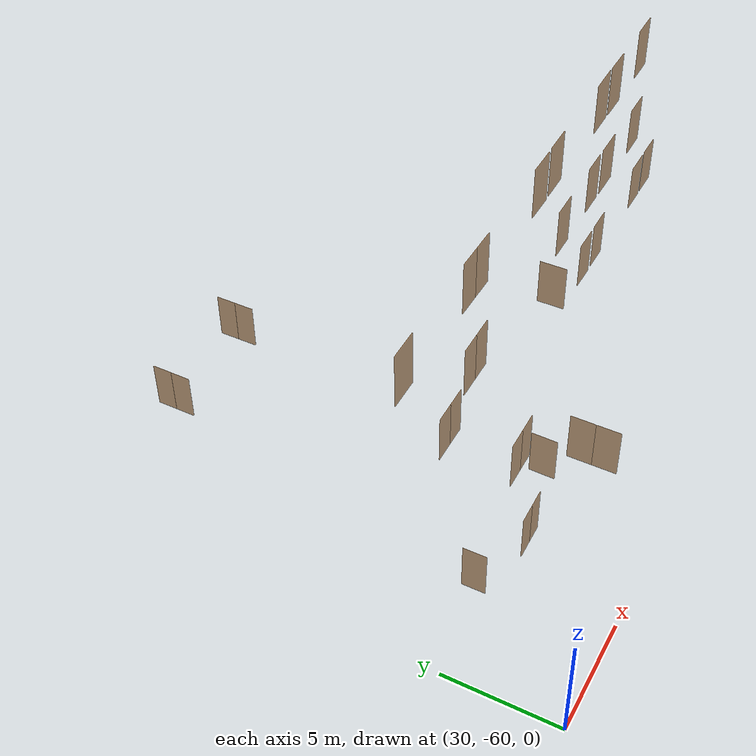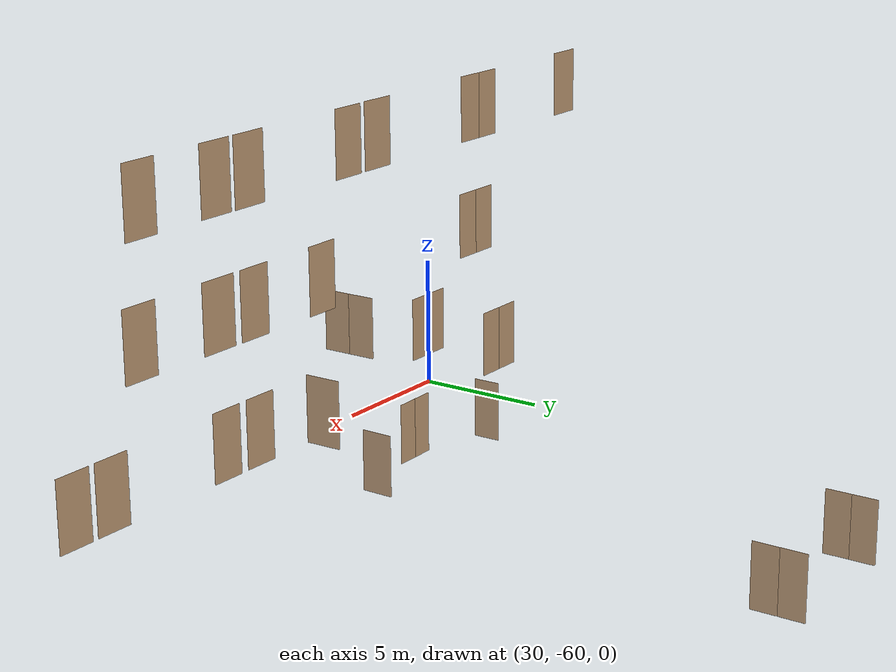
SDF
<sdf version="1.7">
 <world name="sim_world">
  <model name="Snull5">
   <pose>41.95467274017098 -38.68651756711344 0.0 0 0 1.5707963267948966</pose>
   <link name="right">
    <pose>0.4606093417466308 0 1.11 0 0 0</pose>
    <visual name="right_visual">
     <geometry><box><size>0.9112186834932616 0.03 2.2</size></box></geometry>
     <material>
      <ambient>0.5 0.25 0 0.6</ambient>
      <diffuse>0.5 0.25 0 0.6</diffuse>
      <pbr><metal><metalness>0.0</metalness></metal></pbr>
     </material>
    </visual>
    <collision name="right_collision">
     <geometry><box><size>0.9112186834932616 0.03 2.2</size></box></geometry>
     <surface><contact><collide_bitmask>0x02</collide_bitmask></contact></surface>
    </collision>
    <inertial>
     <mass>50.0</mass>
     <inertia><ixx>20.17041666666667</ixx><iyy>23.626331204779977</iyy><izz>3.463414538113304</izz></inertia>
    </inertial>
   </link>
   <joint name="right_joint" type="revolute">
    <parent>world</parent>
    <child>right</child>
    <axis><xyz>0 0 -1</xyz><limit><lower>0</lower><upper>1.57</upper></limit></axis>
    <pose>0.4606093417466308 0 0 0 0 0</pose>
   </joint>
   <link name="left">
    <pose>-0.4606093417466308 0 1.11 0 0 0</pose>
    <visual name="left_visual">
     <geometry><box><size>0.9112186834932616 0.03 2.2</size></box></geometry>
     <material>
      <ambient>0.5 0.25 0 0.6</ambient>
      <diffuse>0.5 0.25 0 0.6</diffuse>
      <pbr><metal><metalness>0.0</metalness></metal></pbr>
     </material>
    </visual>
    <collision name="left_collision">
     <geometry><box><size>0.9112186834932616 0.03 2.2</size></box></geometry>
     <surface><contact><collide_bitmask>0x02</collide_bitmask></contact></surface>
    </collision>
    <inertial>
     <mass>50.0</mass>
     <inertia><ixx>20.17041666666667</ixx><iyy>23.626331204779977</iyy><izz>3.463414538113304</izz></inertia>
    </inertial>
   </link>
   <joint name="left_joint" type="revolute">
    <parent>world</parent>
    <child>left</child>
    <axis><xyz>0 0 -1</xyz><limit><lower>-1.57</lower><upper>0</upper></limit></axis>
    <pose>-0.4606093417466308 0 0 0 0 0</pose>
   </joint>
   <plugin name="register_component" filename="libregister_component.so">
    <component name="Door">
     <v_max_door>0.5</v_max_door>
     <a_max_door>0.3</a_max_door>
     <a_nom_door>0.15</a_nom_door>
     <dx_min_door>0.01</dx_min_door>
     <f_max_door>500.0</f_max_door>
     <ros_interface>true</ros_interface>
     <door name="Snull5" type="DoubleSwingDoor" left_joint_name="left_joint" right_joint_name="right_joint"/>
    </component>
   </plugin>
  </model>
  <model name="Snull6">
   <pose>36.91817570847177 -38.673374901990044 0.0 0 0 -1.574078184232942</pose>
   <link name="right">
    <pose>0.45222959440596977 0 1.11 0 0 0</pose>
    <visual name="right_visual">
     <geometry><box><size>0.8944591888119395 0.03 2.2</size></box></geometry>
     <material>
      <ambient>0.5 0.25 0 0.6</ambient>
      <diffuse>0.5 0.25 0 0.6</diffuse>
      <pbr><metal><metalness>0.0</metalness></metal></pbr>
     </material>
    </visual>
    <collision name="right_collision">
     <geometry><box><size>0.8944591888119395 0.03 2.2</size></box></geometry>
     <surface><contact><collide_bitmask>0x02</collide_bitmask></contact></surface>
    </collision>
    <inertial>
     <mass>50.0</mass>
     <inertia><ixx>20.17041666666667</ixx><iyy>23.500238501875476</iyy><izz>3.3373218352088037</izz></inertia>
    </inertial>
   </link>
   <joint name="right_joint" type="revolute">
    <parent>world</parent>
    <child>right</child>
    <axis><xyz>0 0 -1</xyz><limit><lower>0</lower><upper>1.57</upper></limit></axis>
    <pose>0.45222959440596977 0 0 0 0 0</pose>
   </joint>
   <link name="left">
    <pose>-0.45222959440596977 0 1.11 0 0 0</pose>
    <visual name="left_visual">
     <geometry><box><size>0.8944591888119395 0.03 2.2</size></box></geometry>
     <material>
      <ambient>0.5 0.25 0 0.6</ambient>
      <diffuse>0.5 0.25 0 0.6</diffuse>
      <pbr><metal><metalness>0.0</metalness></metal></pbr>
     </material>
    </visual>
    <collision name="left_collision">
     <geometry><box><size>0.8944591888119395 0.03 2.2</size></box></geometry>
     <surface><contact><collide_bitmask>0x02</collide_bitmask></contact></surface>
    </collision>
    <inertial>
     <mass>50.0</mass>
     <inertia><ixx>20.17041666666667</ixx><iyy>23.500238501875476</iyy><izz>3.3373218352088037</izz></inertia>
    </inertial>
   </link>
   <joint name="left_joint" type="revolute">
    <parent>world</parent>
    <child>left</child>
    <axis><xyz>0 0 -1</xyz><limit><lower>-1.57</lower><upper>0</upper></limit></axis>
    <pose>-0.45222959440596977 0 0 0 0 0</pose>
   </joint>
   <plugin name="register_component" filename="libregister_component.so">
    <component name="Door">
     <v_max_door>0.5</v_max_door>
     <a_max_door>0.3</a_max_door>
     <a_nom_door>0.15</a_nom_door>
     <dx_min_door>0.01</dx_min_door>
     <f_max_door>500.0</f_max_door>
     <ros_interface>true</ros_interface>
     <door name="Snull6" type="DoubleSwingDoor" left_joint_name="left_joint" right_joint_name="right_joint"/>
    </component>
   </plugin>
  </model>
  <model name="Snull7">
   <pose>34.106597468543455 -54.42554978904526 0.0 0 0 -1.5707963267948966</pose>
   <link name="right">
    <pose>0 0 1.11 0 0 0</pose>
    <visual name="right_visual">
     <geometry><box><size>1.0218858977709695 0.03 2.2</size></box></geometry>
     <material>
      <ambient>0.5 0.25 0 0.6</ambient>
      <diffuse>0.5 0.25 0 0.6</diffuse>
      <pbr><metal><metalness>0.0</metalness></metal></pbr>
     </material>
    </visual>
    <collision name="right_collision">
     <geometry><box><size>1.0218858977709695 0.03 2.2</size></box></geometry>
     <surface><contact><collide_bitmask>0x02</collide_bitmask></contact></surface>
    </collision>
    <inertial>
     <mass>50.0</mass>
     <inertia><ixx>20.17041666666667</ixx><iyy>24.517711616929923</iyy><izz>4.354794950263251</izz></inertia>
    </inertial>
   </link>
   <joint name="right_joint" type="revolute">
    <parent>world</parent>
    <child>right</child>
    <axis><xyz>0 0 -1</xyz><limit><lower>0</lower><upper>1.57</upper></limit></axis>
    <pose>0.5159429488854848 0 0 0 0 0</pose>
   </joint>
   <plugin name="register_component" filename="libregister_component.so">
    <component name="Door">
     <v_max_door>0.5</v_max_door>
     <a_max_door>0.3</a_max_door>
     <a_nom_door>0.15</a_nom_door>
     <dx_min_door>0.01</dx_min_door>
     <f_max_door>500.0</f_max_door>
     <ros_interface>true</ros_interface>
     <door name="Snull7" type="SwingDoor" left_joint_name="empty_joint" right_joint_name="right_joint"/>
    </component>
   </plugin>
  </model>
  <model name="Snull8">
   <pose>40.75631930702308 -54.42665123399168 0.0 0 0 1.550409697207399</pose>
   <link name="right">
    <pose>0 0 1.11 0 0 0</pose>
    <visual name="right_visual">
     <geometry><box><size>1.171367842129814 0.03 2.2</size></box></geometry>
     <material>
      <ambient>0.5 0.25 0 0.6</ambient>
      <diffuse>0.5 0.25 0 0.6</diffuse>
      <pbr><metal><metalness>0.0</metalness></metal></pbr>
     </material>
    </visual>
    <collision name="right_collision">
     <geometry><box><size>1.171367842129814 0.03 2.2</size></box></geometry>
     <surface><contact><collide_bitmask>0x02</collide_bitmask></contact></surface>
    </collision>
    <inertial>
     <mass>50.0</mass>
     <inertia><ixx>20.17041666666667</ixx><iyy>25.88376092323274</iyy><izz>5.720844256566069</izz></inertia>
    </inertial>
   </link>
   <joint name="right_joint" type="revolute">
    <parent>world</parent>
    <child>right</child>
    <axis><xyz>0 0 1</xyz><limit><lower>0</lower><upper>1.57</upper></limit></axis>
    <pose>0.590683921064907 0 0 0 0 0</pose>
   </joint>
   <plugin name="register_component" filename="libregister_component.so">
    <component name="Door">
     <v_max_door>0.5</v_max_door>
     <a_max_door>0.3</a_max_door>
     <a_nom_door>0.15</a_nom_door>
     <dx_min_door>0.01</dx_min_door>
     <f_max_door>500.0</f_max_door>
     <ros_interface>true</ros_interface>
     <door name="Snull8" type="SwingDoor" left_joint_name="empty_joint" right_joint_name="right_joint"/>
    </component>
   </plugin>
  </model>
  <model name="nueva">
   <pose>37.19622521748868 -55.42838740992417 0.0 0 0 -3.126962611458349</pose>
   <link name="right">
    <pose>0.4166428032143303 0 1.11 0 0 0</pose>
    <visual name="right_visual">
     <geometry><box><size>0.8232856064286606 0.03 2.2</size></box></geometry>
     <material>
      <ambient>0.5 0.25 0 0.6</ambient>
      <diffuse>0.5 0.25 0 0.6</diffuse>
      <pbr><metal><metalness>0.0</metalness></metal></pbr>
     </material>
    </visual>
    <collision name="right_collision">
     <geometry><box><size>0.8232856064286606 0.03 2.2</size></box></geometry>
     <surface><contact><collide_bitmask>0x02</collide_bitmask></contact></surface>
    </collision>
    <inertial>
     <mass>50.0</mass>
     <inertia><ixx>20.17041666666667</ixx><iyy>22.990829957302537</iyy><izz>2.827913290635864</izz></inertia>
    </inertial>
   </link>
   <joint name="right_joint" type="revolute">
    <parent>world</parent>
    <child>right</child>
    <axis><xyz>0 0 -1</xyz><limit><lower>0</lower><upper>1.57</upper></limit></axis>
    <pose>0.4166428032143303 0 0 0 0 0</pose>
   </joint>
   <link name="left">
    <pose>-0.4166428032143303 0 1.11 0 0 0</pose>
    <visual name="left_visual">
     <geometry><box><size>0.8232856064286606 0.03 2.2</size></box></geometry>
     <material>
      <ambient>0.5 0.25 0 0.6</ambient>
      <diffuse>0.5 0.25 0 0.6</diffuse>
      <pbr><metal><metalness>0.0</metalness></metal></pbr>
     </material>
    </visual>
    <collision name="left_collision">
     <geometry><box><size>0.8232856064286606 0.03 2.2</size></box></geometry>
     <surface><contact><collide_bitmask>0x02</collide_bitmask></contact></surface>
    </collision>
    <inertial>
     <mass>50.0</mass>
     <inertia><ixx>20.17041666666667</ixx><iyy>22.990829957302537</iyy><izz>2.827913290635864</izz></inertia>
    </inertial>
   </link>
   <joint name="left_joint" type="revolute">
    <parent>world</parent>
    <child>left</child>
    <axis><xyz>0 0 -1</xyz><limit><lower>-1.57</lower><upper>0</upper></limit></axis>
    <pose>-0.4166428032143303 0 0 0 0 0</pose>
   </joint>
   <plugin name="register_component" filename="libregister_component.so">
    <component name="Door">
     <v_max_door>0.5</v_max_door>
     <a_max_door>0.3</a_max_door>
     <a_nom_door>0.15</a_nom_door>
     <dx_min_door>0.01</dx_min_door>
     <f_max_door>500.0</f_max_door>
     <ros_interface>true</ros_interface>
     <door name="nueva" type="DoubleSwingDoor" left_joint_name="left_joint" right_joint_name="right_joint"/>
    </component>
   </plugin>
  </model>
  <model name="0null27">
   <pose>48.75335100623527 -52.64216107232197 4.0 0 0 -0.008093460433106648</pose>
   <link name="right">
    <pose>0 0 1.11 0 0 0</pose>
    <visual name="right_visual">
     <geometry><box><size>1.189456825434039 0.03 2.2</size></box></geometry>
     <material>
      <ambient>0.5 0.25 0 0.6</ambient>
      <diffuse>0.5 0.25 0 0.6</diffuse>
      <pbr><metal><metalness>0.0</metalness></metal></pbr>
     </material>
    </visual>
    <collision name="right_collision">
     <geometry><box><size>1.189456825434039 0.03 2.2</size></box></geometry>
     <surface><contact><collide_bitmask>0x02</collide_bitmask></contact></surface>
    </collision>
    <inertial>
     <mass>50.0</mass>
     <inertia><ixx>20.17041666666667</ixx><iyy>26.06169808154843</iyy><izz>5.898781414881757</izz></inertia>
    </inertial>
   </link>
   <joint name="right_joint" type="revolute">
    <parent>world</parent>
    <child>right</child>
    <axis><xyz>0 0 1</xyz><limit><lower>0</lower><upper>1.57</upper></limit></axis>
    <pose>0.5997284127170195 0 0 0 0 0</pose>
   </joint>
   <plugin name="register_component" filename="libregister_component.so">
    <component name="Door">
     <v_max_door>0.5</v_max_door>
     <a_max_door>0.3</a_max_door>
     <a_nom_door>0.15</a_nom_door>
     <dx_min_door>0.01</dx_min_door>
     <f_max_door>500.0</f_max_door>
     <ros_interface>true</ros_interface>
     <door name="0null27" type="SwingDoor" left_joint_name="empty_joint" right_joint_name="right_joint"/>
    </component>
   </plugin>
  </model>
  <model name="0null28">
   <pose>50.25034536833063 -52.64027554792216 4.0 0 0 3.136493275084232</pose>
   <link name="right">
    <pose>0 0 1.11 0 0 0</pose>
    <visual name="right_visual">
     <geometry><box><size>1.1541864392140333 0.03 2.2</size></box></geometry>
     <material>
      <ambient>0.5 0.25 0 0.6</ambient>
      <diffuse>0.5 0.25 0 0.6</diffuse>
      <pbr><metal><metalness>0.0</metalness></metal></pbr>
     </material>
    </visual>
    <collision name="right_collision">
     <geometry><box><size>1.1541864392140333 0.03 2.2</size></box></geometry>
     <surface><contact><collide_bitmask>0x02</collide_bitmask></contact></surface>
    </collision>
    <inertial>
     <mass>50.0</mass>
     <inertia><ixx>20.17041666666667</ixx><iyy>25.717276401939877</iyy><izz>5.554359735273206</izz></inertia>
    </inertial>
   </link>
   <joint name="right_joint" type="revolute">
    <parent>world</parent>
    <child>right</child>
    <axis><xyz>0 0 -1</xyz><limit><lower>0</lower><upper>1.57</upper></limit></axis>
    <pose>0.5820932196070167 0 0 0 0 0</pose>
   </joint>
   <plugin name="register_component" filename="libregister_component.so">
    <component name="Door">
     <v_max_door>0.5</v_max_door>
     <a_max_door>0.3</a_max_door>
     <a_nom_door>0.15</a_nom_door>
     <dx_min_door>0.01</dx_min_door>
     <f_max_door>500.0</f_max_door>
     <ros_interface>true</ros_interface>
     <door name="0null28" type="SwingDoor" left_joint_name="empty_joint" right_joint_name="right_joint"/>
    </component>
   </plugin>
  </model>
  <model name="0null29">
   <pose>54.99632229399242 -52.63359220400997 4.0 0 0 -0.004848699248225645</pose>
   <link name="right">
    <pose>0 0 1.11 0 0 0</pose>
    <visual name="right_visual">
     <geometry><box><size>1.245176610901063 0.03 2.2</size></box></geometry>
     <material>
      <ambient>0.5 0.25 0 0.6</ambient>
      <diffuse>0.5 0.25 0 0.6</diffuse>
      <pbr><metal><metalness>0.0</metalness></metal></pbr>
     </material>
    </visual>
    <collision name="right_collision">
     <geometry><box><size>1.245176610901063 0.03 2.2</size></box></geometry>
     <surface><contact><collide_bitmask>0x02</collide_bitmask></contact></surface>
    </collision>
    <inertial>
     <mass>50.0</mass>
     <inertia><ixx>20.17041666666667</ixx><iyy>26.626936634729407</iyy><izz>6.464019968062737</izz></inertia>
    </inertial>
   </link>
   <joint name="right_joint" type="revolute">
    <parent>world</parent>
    <child>right</child>
    <axis><xyz>0 0 1</xyz><limit><lower>0</lower><upper>1.57</upper></limit></axis>
    <pose>0.6275883054505315 0 0 0 0 0</pose>
   </joint>
   <plugin name="register_component" filename="libregister_component.so">
    <component name="Door">
     <v_max_door>0.5</v_max_door>
     <a_max_door>0.3</a_max_door>
     <a_nom_door>0.15</a_nom_door>
     <dx_min_door>0.01</dx_min_door>
     <f_max_door>500.0</f_max_door>
     <ros_interface>true</ros_interface>
     <door name="0null29" type="SwingDoor" left_joint_name="empty_joint" right_joint_name="right_joint"/>
    </component>
   </plugin>
  </model>
  <model name="0null30">
   <pose>56.44991225777542 -52.6336295411268 4.0 0 0 3.136553605109553</pose>
   <link name="right">
    <pose>0 0 1.11 0 0 0</pose>
    <visual name="right_visual">
     <geometry><box><size>1.2125820752857799 0.03 2.2</size></box></geometry>
     <material>
      <ambient>0.5 0.25 0 0.6</ambient>
      <diffuse>0.5 0.25 0 0.6</diffuse>
      <pbr><metal><metalness>0.0</metalness></metal></pbr>
     </material>
    </visual>
    <collision name="right_collision">
     <geometry><box><size>1.2125820752857799 0.03 2.2</size></box></geometry>
     <surface><contact><collide_bitmask>0x02</collide_bitmask></contact></surface>
    </collision>
    <inertial>
     <mass>50.0</mass>
     <inertia><ixx>20.17041666666667</ixx><iyy>26.293147038768208</iyy><izz>6.130230372101536</izz></inertia>
    </inertial>
   </link>
   <joint name="right_joint" type="revolute">
    <parent>world</parent>
    <child>right</child>
    <axis><xyz>0 0 -1</xyz><limit><lower>0</lower><upper>1.57</upper></limit></axis>
    <pose>0.61129103764289 0 0 0 0 0</pose>
   </joint>
   <plugin name="register_component" filename="libregister_component.so">
    <component name="Door">
     <v_max_door>0.5</v_max_door>
     <a_max_door>0.3</a_max_door>
     <a_nom_door>0.15</a_nom_door>
     <dx_min_door>0.01</dx_min_door>
     <f_max_door>500.0</f_max_door>
     <ros_interface>true</ros_interface>
     <door name="0null30" type="SwingDoor" left_joint_name="empty_joint" right_joint_name="right_joint"/>
    </component>
   </plugin>
  </model>
  <model name="0null31">
   <pose>46.4814061158197 -52.07805324272856 4.0 0 0 1.5821234363534646</pose>
   <link name="right">
    <pose>0 0 1.11 0 0 0</pose>
    <visual name="right_visual">
     <geometry><box><size>1.2261245512358774 0.03 2.2</size></box></geometry>
     <material>
      <ambient>0.5 0.25 0 0.6</ambient>
      <diffuse>0.5 0.25 0 0.6</diffuse>
      <pbr><metal><metalness>0.0</metalness></metal></pbr>
     </material>
    </visual>
    <collision name="right_collision">
     <geometry><box><size>1.2261245512358774 0.03 2.2</size></box></geometry>
     <surface><contact><collide_bitmask>0x02</collide_bitmask></contact></surface>
    </collision>
    <inertial>
     <mass>50.0</mass>
     <inertia><ixx>20.17041666666667</ixx><iyy>26.430755896430764</iyy><izz>6.267839229764091</izz></inertia>
    </inertial>
   </link>
   <joint name="right_joint" type="revolute">
    <parent>world</parent>
    <child>right</child>
    <axis><xyz>0 0 -1</xyz><limit><lower>0</lower><upper>1.57</upper></limit></axis>
    <pose>0.6180622756179387 0 0 0 0 0</pose>
   </joint>
   <plugin name="register_component" filename="libregister_component.so">
    <component name="Door">
     <v_max_door>0.5</v_max_door>
     <a_max_door>0.3</a_max_door>
     <a_nom_door>0.15</a_nom_door>
     <dx_min_door>0.01</dx_min_door>
     <f_max_door>500.0</f_max_door>
     <ros_interface>true</ros_interface>
     <door name="0null31" type="SwingDoor" left_joint_name="empty_joint" right_joint_name="right_joint"/>
    </component>
   </plugin>
  </model>
  <model name="0null32">
   <pose>38.716872643094476 -57.118956054213456 4.0 0 0 1.5707963267948966</pose>
   <link name="right">
    <pose>0.5170257252734931 0 1.11 0 0 0</pose>
    <visual name="right_visual">
     <geometry><box><size>1.0240514505469862 0.03 2.2</size></box></geometry>
     <material>
      <ambient>0.5 0.25 0 0.6</ambient>
      <diffuse>0.5 0.25 0 0.6</diffuse>
      <pbr><metal><metalness>0.0</metalness></metal></pbr>
     </material>
    </visual>
    <collision name="right_collision">
     <geometry><box><size>1.0240514505469862 0.03 2.2</size></box></geometry>
     <surface><contact><collide_bitmask>0x02</collide_bitmask></contact></surface>
    </collision>
    <inertial>
     <mass>50.0</mass>
     <inertia><ixx>20.17041666666667</ixx><iyy>24.53617238903078</iyy><izz>4.37325572236411</izz></inertia>
    </inertial>
   </link>
   <joint name="right_joint" type="revolute">
    <parent>world</parent>
    <child>right</child>
    <axis><xyz>0 0 1</xyz><limit><lower>0</lower><upper>1.57</upper></limit></axis>
    <pose>0.5170257252734931 0 0 0 0 0</pose>
   </joint>
   <link name="left">
    <pose>-0.5170257252734931 0 1.11 0 0 0</pose>
    <visual name="left_visual">
     <geometry><box><size>1.0240514505469862 0.03 2.2</size></box></geometry>
     <material>
      <ambient>0.5 0.25 0 0.6</ambient>
      <diffuse>0.5 0.25 0 0.6</diffuse>
      <pbr><metal><metalness>0.0</metalness></metal></pbr>
     </material>
    </visual>
    <collision name="left_collision">
     <geometry><box><size>1.0240514505469862 0.03 2.2</size></box></geometry>
     <surface><contact><collide_bitmask>0x02</collide_bitmask></contact></surface>
    </collision>
    <inertial>
     <mass>50.0</mass>
     <inertia><ixx>20.17041666666667</ixx><iyy>24.53617238903078</iyy><izz>4.37325572236411</izz></inertia>
    </inertial>
   </link>
   <joint name="left_joint" type="revolute">
    <parent>world</parent>
    <child>left</child>
    <axis><xyz>0 0 1</xyz><limit><lower>-1.57</lower><upper>0</upper></limit></axis>
    <pose>-0.5170257252734931 0 0 0 0 0</pose>
   </joint>
   <plugin name="register_component" filename="libregister_component.so">
    <component name="Door">
     <v_max_door>0.5</v_max_door>
     <a_max_door>0.3</a_max_door>
     <a_nom_door>0.15</a_nom_door>
     <dx_min_door>0.01</dx_min_door>
     <f_max_door>500.0</f_max_door>
     <ros_interface>true</ros_interface>
     <door name="0null32" type="DoubleSwingDoor" left_joint_name="left_joint" right_joint_name="right_joint"/>
    </component>
   </plugin>
  </model>
  <model name="0null176">
   <pose>37.17137736623975 -51.82124855318669 4.0 0 0 -3.140550604193771</pose>
   <link name="right">
    <pose>0.4568385409799299 0 1.11 0 0 0</pose>
    <visual name="right_visual">
     <geometry><box><size>0.9036770819598597 0.03 2.2</size></box></geometry>
     <material>
      <ambient>0.5 0.25 0 0.6</ambient>
      <diffuse>0.5 0.25 0 0.6</diffuse>
      <pbr><metal><metalness>0.0</metalness></metal></pbr>
     </material>
    </visual>
    <collision name="right_collision">
     <geometry><box><size>0.9036770819598597 0.03 2.2</size></box></geometry>
     <surface><contact><collide_bitmask>0x02</collide_bitmask></contact></surface>
    </collision>
    <inertial>
     <mass>50.0</mass>
     <inertia><ixx>20.17041666666667</ixx><iyy>23.5693011185812</iyy><izz>3.40638445191453</izz></inertia>
    </inertial>
   </link>
   <joint name="right_joint" type="revolute">
    <parent>world</parent>
    <child>right</child>
    <axis><xyz>0 0 -1</xyz><limit><lower>0</lower><upper>1.57</upper></limit></axis>
    <pose>0.4568385409799299 0 0 0 0 0</pose>
   </joint>
   <link name="left">
    <pose>-0.4568385409799299 0 1.11 0 0 0</pose>
    <visual name="left_visual">
     <geometry><box><size>0.9036770819598597 0.03 2.2</size></box></geometry>
     <material>
      <ambient>0.5 0.25 0 0.6</ambient>
      <diffuse>0.5 0.25 0 0.6</diffuse>
      <pbr><metal><metalness>0.0</metalness></metal></pbr>
     </material>
    </visual>
    <collision name="left_collision">
     <geometry><box><size>0.9036770819598597 0.03 2.2</size></box></geometry>
     <surface><contact><collide_bitmask>0x02</collide_bitmask></contact></surface>
    </collision>
    <inertial>
     <mass>50.0</mass>
     <inertia><ixx>20.17041666666667</ixx><iyy>23.5693011185812</iyy><izz>3.40638445191453</izz></inertia>
    </inertial>
   </link>
   <joint name="left_joint" type="revolute">
    <parent>world</parent>
    <child>left</child>
    <axis><xyz>0 0 -1</xyz><limit><lower>-1.57</lower><upper>0</upper></limit></axis>
    <pose>-0.4568385409799299 0 0 0 0 0</pose>
   </joint>
   <plugin name="register_component" filename="libregister_component.so">
    <component name="Door">
     <v_max_door>0.5</v_max_door>
     <a_max_door>0.3</a_max_door>
     <a_nom_door>0.15</a_nom_door>
     <dx_min_door>0.01</dx_min_door>
     <f_max_door>500.0</f_max_door>
     <ros_interface>true</ros_interface>
     <door name="0null176" type="DoubleSwingDoor" left_joint_name="left_joint" right_joint_name="right_joint"/>
    </component>
   </plugin>
  </model>
  <model name="0null177">
   <pose>37.18649889855503 -54.80007840794531 4.0 0 0 -3.1376136213155723</pose>
   <link name="right">
    <pose>0.4527534628040268 0 1.11 0 0 0</pose>
    <visual name="right_visual">
     <geometry><box><size>0.8955069256080536 0.03 2.2</size></box></geometry>
     <material>
      <ambient>0.5 0.25 0 0.6</ambient>
      <diffuse>0.5 0.25 0 0.6</diffuse>
      <pbr><metal><metalness>0.0</metalness></metal></pbr>
     </material>
    </visual>
    <collision name="right_collision">
     <geometry><box><size>0.8955069256080536 0.03 2.2</size></box></geometry>
     <surface><contact><collide_bitmask>0x02</collide_bitmask></contact></surface>
    </collision>
    <inertial>
     <mass>50.0</mass>
     <inertia><ixx>20.17041666666667</ixx><iyy>23.50805272421662</iyy><izz>3.3451360575499502</izz></inertia>
    </inertial>
   </link>
   <joint name="right_joint" type="revolute">
    <parent>world</parent>
    <child>right</child>
    <axis><xyz>0 0 -1</xyz><limit><lower>0</lower><upper>1.57</upper></limit></axis>
    <pose>0.4527534628040268 0 0 0 0 0</pose>
   </joint>
   <link name="left">
    <pose>-0.4527534628040268 0 1.11 0 0 0</pose>
    <visual name="left_visual">
     <geometry><box><size>0.8955069256080536 0.03 2.2</size></box></geometry>
     <material>
      <ambient>0.5 0.25 0 0.6</ambient>
      <diffuse>0.5 0.25 0 0.6</diffuse>
      <pbr><metal><metalness>0.0</metalness></metal></pbr>
     </material>
    </visual>
    <collision name="left_collision">
     <geometry><box><size>0.8955069256080536 0.03 2.2</size></box></geometry>
     <surface><contact><collide_bitmask>0x02</collide_bitmask></contact></surface>
    </collision>
    <inertial>
     <mass>50.0</mass>
     <inertia><ixx>20.17041666666667</ixx><iyy>23.50805272421662</iyy><izz>3.3451360575499502</izz></inertia>
    </inertial>
   </link>
   <joint name="left_joint" type="revolute">
    <parent>world</parent>
    <child>left</child>
    <axis><xyz>0 0 -1</xyz><limit><lower>-1.57</lower><upper>0</upper></limit></axis>
    <pose>-0.4527534628040268 0 0 0 0 0</pose>
   </joint>
   <plugin name="register_component" filename="libregister_component.so">
    <component name="Door">
     <v_max_door>0.5</v_max_door>
     <a_max_door>0.3</a_max_door>
     <a_nom_door>0.15</a_nom_door>
     <dx_min_door>0.01</dx_min_door>
     <f_max_door>500.0</f_max_door>
     <ros_interface>true</ros_interface>
     <door name="0null177" type="DoubleSwingDoor" left_joint_name="left_joint" right_joint_name="right_joint"/>
    </component>
   </plugin>
  </model>
  <model name="1null27">
   <pose>48.83506328641299 -52.62416458201094 8.0 0 0 0.0</pose>
   <link name="right">
    <pose>0 0 1.11 0 0 0</pose>
    <visual name="right_visual">
     <geometry><box><size>1.2076007168726457 0.03 2.2</size></box></geometry>
     <material>
      <ambient>0.5 0.25 0 0.6</ambient>
      <diffuse>0.5 0.25 0 0.6</diffuse>
      <pbr><metal><metalness>0.0</metalness></metal></pbr>
     </material>
    </visual>
    <collision name="right_collision">
     <geometry><box><size>1.2076007168726457 0.03 2.2</size></box></geometry>
     <surface><contact><collide_bitmask>0x02</collide_bitmask></contact></surface>
    </collision>
    <inertial>
     <mass>50.0</mass>
     <inertia><ixx>20.17041666666667</ixx><iyy>26.242914547463872</iyy><izz>6.079997880797199</izz></inertia>
    </inertial>
   </link>
   <joint name="right_joint" type="revolute">
    <parent>world</parent>
    <child>right</child>
    <axis><xyz>0 0 1</xyz><limit><lower>0</lower><upper>1.57</upper></limit></axis>
    <pose>0.6088003584363229 0 0 0 0 0</pose>
   </joint>
   <plugin name="register_component" filename="libregister_component.so">
    <component name="Door">
     <v_max_door>0.5</v_max_door>
     <a_max_door>0.3</a_max_door>
     <a_nom_door>0.15</a_nom_door>
     <dx_min_door>0.01</dx_min_door>
     <f_max_door>500.0</f_max_door>
     <ros_interface>true</ros_interface>
     <door name="1null27" type="SwingDoor" left_joint_name="empty_joint" right_joint_name="right_joint"/>
    </component>
   </plugin>
  </model>
  <model name="1ull28">
   <pose>50.38944479707274 -52.637120561550205 8.0 0 0 3.141592653589793</pose>
   <link name="right">
    <pose>0 0 1.11 0 0 0</pose>
    <visual name="right_visual">
     <geometry><box><size>1.3371605122652477 0.03 2.2</size></box></geometry>
     <material>
      <ambient>0.5 0.25 0 0.6</ambient>
      <diffuse>0.5 0.25 0 0.6</diffuse>
      <pbr><metal><metalness>0.0</metalness></metal></pbr>
     </material>
    </visual>
    <collision name="right_collision">
     <geometry><box><size>1.3371605122652477 0.03 2.2</size></box></geometry>
     <surface><contact><collide_bitmask>0x02</collide_bitmask></contact></surface>
    </collision>
    <inertial>
     <mass>50.0</mass>
     <inertia><ixx>20.17041666666667</ixx><iyy>27.616659314839417</iyy><izz>7.4537426481727485</izz></inertia>
    </inertial>
   </link>
   <joint name="right_joint" type="revolute">
    <parent>world</parent>
    <child>right</child>
    <axis><xyz>0 0 -1</xyz><limit><lower>0</lower><upper>1.57</upper></limit></axis>
    <pose>0.6735802561326238 0 0 0 0 0</pose>
   </joint>
   <plugin name="register_component" filename="libregister_component.so">
    <component name="Door">
     <v_max_door>0.5</v_max_door>
     <a_max_door>0.3</a_max_door>
     <a_nom_door>0.15</a_nom_door>
     <dx_min_door>0.01</dx_min_door>
     <f_max_door>500.0</f_max_door>
     <ros_interface>true</ros_interface>
     <door name="1ull28" type="SwingDoor" left_joint_name="empty_joint" right_joint_name="right_joint"/>
    </component>
   </plugin>
  </model>
  <model name="1null75">
   <pose>37.17811671582719 -52.769331292237574 8.0 0 0 3.141592653589793</pose>
   <link name="right">
    <pose>0.4646137475264158 0 1.11 0 0 0</pose>
    <visual name="right_visual">
     <geometry><box><size>0.9192274950528316 0.03 2.2</size></box></geometry>
     <material>
      <ambient>0.5 0.25 0 0.6</ambient>
      <diffuse>0.5 0.25 0 0.6</diffuse>
      <pbr><metal><metalness>0.0</metalness></metal></pbr>
     </material>
    </visual>
    <collision name="right_collision">
     <geometry><box><size>0.9192274950528316 0.03 2.2</size></box></geometry>
     <surface><contact><collide_bitmask>0x02</collide_bitmask></contact></surface>
    </collision>
    <inertial>
     <mass>50.0</mass>
     <inertia><ixx>20.17041666666667</ixx><iyy>23.68741328192127</iyy><izz>3.5244966152545985</izz></inertia>
    </inertial>
   </link>
   <joint name="right_joint" type="revolute">
    <parent>world</parent>
    <child>right</child>
    <axis><xyz>0 0 -1</xyz><limit><lower>0</lower><upper>1.57</upper></limit></axis>
    <pose>0.4646137475264158 0 0 0 0 0</pose>
   </joint>
   <link name="left">
    <pose>-0.4646137475264158 0 1.11 0 0 0</pose>
    <visual name="left_visual">
     <geometry><box><size>0.9192274950528316 0.03 2.2</size></box></geometry>
     <material>
      <ambient>0.5 0.25 0 0.6</ambient>
      <diffuse>0.5 0.25 0 0.6</diffuse>
      <pbr><metal><metalness>0.0</metalness></metal></pbr>
     </material>
    </visual>
    <collision name="left_collision">
     <geometry><box><size>0.9192274950528316 0.03 2.2</size></box></geometry>
     <surface><contact><collide_bitmask>0x02</collide_bitmask></contact></surface>
    </collision>
    <inertial>
     <mass>50.0</mass>
     <inertia><ixx>20.17041666666667</ixx><iyy>23.68741328192127</iyy><izz>3.5244966152545985</izz></inertia>
    </inertial>
   </link>
   <joint name="left_joint" type="revolute">
    <parent>world</parent>
    <child>left</child>
    <axis><xyz>0 0 -1</xyz><limit><lower>-1.57</lower><upper>0</upper></limit></axis>
    <pose>-0.4646137475264158 0 0 0 0 0</pose>
   </joint>
   <plugin name="register_component" filename="libregister_component.so">
    <component name="Door">
     <v_max_door>0.5</v_max_door>
     <a_max_door>0.3</a_max_door>
     <a_nom_door>0.15</a_nom_door>
     <dx_min_door>0.01</dx_min_door>
     <f_max_door>500.0</f_max_door>
     <ros_interface>true</ros_interface>
     <door name="1null75" type="DoubleSwingDoor" left_joint_name="left_joint" right_joint_name="right_joint"/>
    </component>
   </plugin>
  </model>
  <model name="1null83">
   <pose>45.65799200985697 -52.64227308367244 8.0 0 0 0.0</pose>
   <link name="right">
    <pose>0 0 1.11 0 0 0</pose>
    <visual name="right_visual">
     <geometry><box><size>1.2004693275585276 0.03 2.2</size></box></geometry>
     <material>
      <ambient>0.5 0.25 0 0.6</ambient>
      <diffuse>0.5 0.25 0 0.6</diffuse>
      <pbr><metal><metalness>0.0</metalness></metal></pbr>
     </material>
    </visual>
    <collision name="right_collision">
     <geometry><box><size>1.2004693275585276 0.03 2.2</size></box></geometry>
     <surface><contact><collide_bitmask>0x02</collide_bitmask></contact></surface>
    </collision>
    <inertial>
     <mass>50.0</mass>
     <inertia><ixx>20.17041666666667</ixx><iyy>26.171360860036767</iyy><izz>6.008444193370098</izz></inertia>
    </inertial>
   </link>
   <joint name="right_joint" type="revolute">
    <parent>world</parent>
    <child>right</child>
    <axis><xyz>0 0 1</xyz><limit><lower>0</lower><upper>1.57</upper></limit></axis>
    <pose>0.6052346637792638 0 0 0 0 0</pose>
   </joint>
   <plugin name="register_component" filename="libregister_component.so">
    <component name="Door">
     <v_max_door>0.5</v_max_door>
     <a_max_door>0.3</a_max_door>
     <a_nom_door>0.15</a_nom_door>
     <dx_min_door>0.01</dx_min_door>
     <f_max_door>500.0</f_max_door>
     <ros_interface>true</ros_interface>
     <door name="1null83" type="SwingDoor" left_joint_name="empty_joint" right_joint_name="right_joint"/>
    </component>
   </plugin>
  </model>
  <model name="1null103">
   <pose>53.612216704626036 -52.64882574767573 8.0 0 0 -3.1396570230263103</pose>
   <link name="right">
    <pose>0 0 1.11 0 0 0</pose>
    <visual name="right_visual">
     <geometry><box><size>1.2823893829535207 0.03 2.2</size></box></geometry>
     <material>
      <ambient>0.5 0.25 0 0.6</ambient>
      <diffuse>0.5 0.25 0 0.6</diffuse>
      <pbr><metal><metalness>0.0</metalness></metal></pbr>
     </material>
    </visual>
    <collision name="right_collision">
     <geometry><box><size>1.2823893829535207 0.03 2.2</size></box></geometry>
     <surface><contact><collide_bitmask>0x02</collide_bitmask></contact></surface>
    </collision>
    <inertial>
     <mass>50.0</mass>
     <inertia><ixx>20.17041666666667</ixx><iyy>27.0188438729663</iyy><izz>6.855927206299631</izz></inertia>
    </inertial>
   </link>
   <joint name="right_joint" type="revolute">
    <parent>world</parent>
    <child>right</child>
    <axis><xyz>0 0 -1</xyz><limit><lower>0</lower><upper>1.57</upper></limit></axis>
    <pose>0.6461946914767603 0 0 0 0 0</pose>
   </joint>
   <plugin name="register_component" filename="libregister_component.so">
    <component name="Door">
     <v_max_door>0.5</v_max_door>
     <a_max_door>0.3</a_max_door>
     <a_nom_door>0.15</a_nom_door>
     <dx_min_door>0.01</dx_min_door>
     <f_max_door>500.0</f_max_door>
     <ros_interface>true</ros_interface>
     <door name="1null103" type="SwingDoor" left_joint_name="empty_joint" right_joint_name="right_joint"/>
    </component>
   </plugin>
  </model>
  <model name="2null27">
   <pose>48.8619086734122 -52.63857670910649 12.0 0 0 0.009766156046505905</pose>
   <link name="right">
    <pose>0 0 1.11 0 0 0</pose>
    <visual name="right_visual">
     <geometry><box><size>1.2898790374388203 0.03 2.2</size></box></geometry>
     <material>
      <ambient>0.5 0.25 0 0.6</ambient>
      <diffuse>0.5 0.25 0 0.6</diffuse>
      <pbr><metal><metalness>0.0</metalness></metal></pbr>
     </material>
    </visual>
    <collision name="right_collision">
     <geometry><box><size>1.2898790374388203 0.03 2.2</size></box></geometry>
     <surface><contact><collide_bitmask>0x02</collide_bitmask></contact></surface>
    </collision>
    <inertial>
     <mass>50.0</mass>
     <inertia><ixx>20.17041666666667</ixx><iyy>27.09911638010041</iyy><izz>6.93619971343374</izz></inertia>
    </inertial>
   </link>
   <joint name="right_joint" type="revolute">
    <parent>world</parent>
    <child>right</child>
    <axis><xyz>0 0 1</xyz><limit><lower>0</lower><upper>1.57</upper></limit></axis>
    <pose>0.6499395187194101 0 0 0 0 0</pose>
   </joint>
   <plugin name="register_component" filename="libregister_component.so">
    <component name="Door">
     <v_max_door>0.5</v_max_door>
     <a_max_door>0.3</a_max_door>
     <a_nom_door>0.15</a_nom_door>
     <dx_min_door>0.01</dx_min_door>
     <f_max_door>500.0</f_max_door>
     <ros_interface>true</ros_interface>
     <door name="2null27" type="SwingDoor" left_joint_name="empty_joint" right_joint_name="right_joint"/>
    </component>
   </plugin>
  </model>
  <model name="2null28">
   <pose>50.299219654258266 -52.64764962849566 12.0 0 0 3.137214345334562</pose>
   <link name="right">
    <pose>0 0 1.11 0 0 0</pose>
    <visual name="right_visual">
     <geometry><box><size>1.2350554313188702 0.03 2.2</size></box></geometry>
     <material>
      <ambient>0.5 0.25 0 0.6</ambient>
      <diffuse>0.5 0.25 0 0.6</diffuse>
      <pbr><metal><metalness>0.0</metalness></metal></pbr>
     </material>
    </visual>
    <collision name="right_collision">
     <geometry><box><size>1.2350554313188702 0.03 2.2</size></box></geometry>
     <surface><contact><collide_bitmask>0x02</collide_bitmask></contact></surface>
    </collision>
    <inertial>
     <mass>50.0</mass>
     <inertia><ixx>20.17041666666667</ixx><iyy>26.522341326792674</iyy><izz>6.3594246601260025</izz></inertia>
    </inertial>
   </link>
   <joint name="right_joint" type="revolute">
    <parent>world</parent>
    <child>right</child>
    <axis><xyz>0 0 -1</xyz><limit><lower>0</lower><upper>1.57</upper></limit></axis>
    <pose>0.6225277156594351 0 0 0 0 0</pose>
   </joint>
   <plugin name="register_component" filename="libregister_component.so">
    <component name="Door">
     <v_max_door>0.5</v_max_door>
     <a_max_door>0.3</a_max_door>
     <a_nom_door>0.15</a_nom_door>
     <dx_min_door>0.01</dx_min_door>
     <f_max_door>500.0</f_max_door>
     <ros_interface>true</ros_interface>
     <door name="2null28" type="SwingDoor" left_joint_name="empty_joint" right_joint_name="right_joint"/>
    </component>
   </plugin>
  </model>
  <model name="2null75">
   <pose>37.14830302804015 -52.6605869394765 12.0 0 0 3.1254990462404093</pose>
   <link name="right">
    <pose>0.4866403260837476 0 1.11 0 0 0</pose>
    <visual name="right_visual">
     <geometry><box><size>0.9632806521674951 0.03 2.2</size></box></geometry>
     <material>
      <ambient>0.5 0.25 0 0.6</ambient>
      <diffuse>0.5 0.25 0 0.6</diffuse>
      <pbr><metal><metalness>0.0</metalness></metal></pbr>
     </material>
    </visual>
    <collision name="right_collision">
     <geometry><box><size>0.9632806521674951 0.03 2.2</size></box></geometry>
     <surface><contact><collide_bitmask>0x02</collide_bitmask></contact></surface>
    </collision>
    <inertial>
     <mass>50.0</mass>
     <inertia><ixx>20.17041666666667</ixx><iyy>24.03295672850098</iyy><izz>3.8700400618343123</izz></inertia>
    </inertial>
   </link>
   <joint name="right_joint" type="revolute">
    <parent>world</parent>
    <child>right</child>
    <axis><xyz>0 0 -1</xyz><limit><lower>0</lower><upper>1.57</upper></limit></axis>
    <pose>0.4866403260837476 0 0 0 0 0</pose>
   </joint>
   <link name="left">
    <pose>-0.4866403260837476 0 1.11 0 0 0</pose>
    <visual name="left_visual">
     <geometry><box><size>0.9632806521674951 0.03 2.2</size></box></geometry>
     <material>
      <ambient>0.5 0.25 0 0.6</ambient>
      <diffuse>0.5 0.25 0 0.6</diffuse>
      <pbr><metal><metalness>0.0</metalness></metal></pbr>
     </material>
    </visual>
    <collision name="left_collision">
     <geometry><box><size>0.9632806521674951 0.03 2.2</size></box></geometry>
     <surface><contact><collide_bitmask>0x02</collide_bitmask></contact></surface>
    </collision>
    <inertial>
     <mass>50.0</mass>
     <inertia><ixx>20.17041666666667</ixx><iyy>24.03295672850098</iyy><izz>3.8700400618343123</izz></inertia>
    </inertial>
   </link>
   <joint name="left_joint" type="revolute">
    <parent>world</parent>
    <child>left</child>
    <axis><xyz>0 0 -1</xyz><limit><lower>-1.57</lower><upper>0</upper></limit></axis>
    <pose>-0.4866403260837476 0 0 0 0 0</pose>
   </joint>
   <plugin name="register_component" filename="libregister_component.so">
    <component name="Door">
     <v_max_door>0.5</v_max_door>
     <a_max_door>0.3</a_max_door>
     <a_nom_door>0.15</a_nom_door>
     <dx_min_door>0.01</dx_min_door>
     <f_max_door>500.0</f_max_door>
     <ros_interface>true</ros_interface>
     <door name="2null75" type="DoubleSwingDoor" left_joint_name="left_joint" right_joint_name="right_joint"/>
    </component>
   </plugin>
  </model>
  <model name="2null78">
   <pose>44.23548519583315 -52.63411492364556 12.0 0 0 0.0035772107379136407</pose>
   <link name="right">
    <pose>0 0 1.11 0 0 0</pose>
    <visual name="right_visual">
     <geometry><box><size>1.2320644753861043 0.03 2.2</size></box></geometry>
     <material>
      <ambient>0.5 0.25 0 0.6</ambient>
      <diffuse>0.5 0.25 0 0.6</diffuse>
      <pbr><metal><metalness>0.0</metalness></metal></pbr>
     </material>
    </visual>
    <collision name="right_collision">
     <geometry><box><size>1.2320644753861043 0.03 2.2</size></box></geometry>
     <surface><contact><collide_bitmask>0x02</collide_bitmask></contact></surface>
    </collision>
    <inertial>
     <mass>50.0</mass>
     <inertia><ixx>20.17041666666667</ixx><iyy>26.49159529795182</iyy><izz>6.328678631285152</izz></inertia>
    </inertial>
   </link>
   <joint name="right_joint" type="revolute">
    <parent>world</parent>
    <child>right</child>
    <axis><xyz>0 0 -1</xyz><limit><lower>0</lower><upper>1.57</upper></limit></axis>
    <pose>0.6210322376930522 0 0 0 0 0</pose>
   </joint>
   <plugin name="register_component" filename="libregister_component.so">
    <component name="Door">
     <v_max_door>0.5</v_max_door>
     <a_max_door>0.3</a_max_door>
     <a_nom_door>0.15</a_nom_door>
     <dx_min_door>0.01</dx_min_door>
     <f_max_door>500.0</f_max_door>
     <ros_interface>true</ros_interface>
     <door name="2null78" type="SwingDoor" left_joint_name="empty_joint" right_joint_name="right_joint"/>
    </component>
   </plugin>
  </model>
  <model name="2null96">
   <pose>53.370477541724185 -52.63799798379566 12.0 0 0 -3.134607658848167</pose>
   <link name="right">
    <pose>0 0 1.11 0 0 0</pose>
    <visual name="right_visual">
     <geometry><box><size>1.24616326551242 0.03 2.2</size></box></geometry>
     <material>
      <ambient>0.5 0.25 0 0.6</ambient>
      <diffuse>0.5 0.25 0 0.6</diffuse>
      <pbr><metal><metalness>0.0</metalness></metal></pbr>
     </material>
    </visual>
    <collision name="right_collision">
     <geometry><box><size>1.24616326551242 0.03 2.2</size></box></geometry>
     <surface><contact><collide_bitmask>0x02</collide_bitmask></contact></surface>
    </collision>
    <inertial>
     <mass>50.0</mass>
     <inertia><ixx>20.17041666666667</ixx><iyy>26.63717868463575</iyy><izz>6.4742620179690755</izz></inertia>
    </inertial>
   </link>
   <joint name="right_joint" type="revolute">
    <parent>world</parent>
    <child>right</child>
    <axis><xyz>0 0 -1</xyz><limit><lower>0</lower><upper>1.57</upper></limit></axis>
    <pose>0.62808163275621 0 0 0 0 0</pose>
   </joint>
   <plugin name="register_component" filename="libregister_component.so">
    <component name="Door">
     <v_max_door>0.5</v_max_door>
     <a_max_door>0.3</a_max_door>
     <a_nom_door>0.15</a_nom_door>
     <dx_min_door>0.01</dx_min_door>
     <f_max_door>500.0</f_max_door>
     <ros_interface>true</ros_interface>
     <door name="2null96" type="SwingDoor" left_joint_name="empty_joint" right_joint_name="right_joint"/>
    </component>
   </plugin>
  </model>
  <model name="nulln4">
   <pose>31.827110480528674 -52.64329985438521 12.0 0 0 -3.1351376758672784</pose>
   <link name="right">
    <pose>0 0 1.11 0 0 0</pose>
    <visual name="right_visual">
     <geometry><box><size>1.2451880061051668 0.03 2.2</size></box></geometry>
     <material>
      <ambient>0.5 0.25 0 0.6</ambient>
      <diffuse>0.5 0.25 0 0.6</diffuse>
      <pbr><metal><metalness>0.0</metalness></metal></pbr>
     </material>
    </visual>
    <collision name="right_collision">
     <geometry><box><size>1.2451880061051668 0.03 2.2</size></box></geometry>
     <surface><contact><collide_bitmask>0x02</collide_bitmask></contact></surface>
    </collision>
    <inertial>
     <mass>50.0</mass>
     <inertia><ixx>20.17041666666667</ixx><iyy>26.62705487728401</iyy><izz>6.464138210617337</izz></inertia>
    </inertial>
   </link>
   <joint name="right_joint" type="revolute">
    <parent>world</parent>
    <child>right</child>
    <axis><xyz>0 0 -1</xyz><limit><lower>0</lower><upper>1.57</upper></limit></axis>
    <pose>0.6275940030525834 0 0 0 0 0</pose>
   </joint>
   <plugin name="register_component" filename="libregister_component.so">
    <component name="Door">
     <v_max_door>0.5</v_max_door>
     <a_max_door>0.3</a_max_door>
     <a_nom_door>0.15</a_nom_door>
     <dx_min_door>0.01</dx_min_door>
     <f_max_door>500.0</f_max_door>
     <ros_interface>true</ros_interface>
     <door name="nulln4" type="SwingDoor" left_joint_name="empty_joint" right_joint_name="right_joint"/>
    </component>
   </plugin>
  </model>
  <model name="null">
   <pose>42.748497181047654 -52.64626815517302 12.0 0 0 -0.008013498842429856</pose>
   <link name="right">
    <pose>0 0 1.11 0 0 0</pose>
    <visual name="right_visual">
     <geometry><box><size>1.2573371109164277 0.03 2.2</size></box></geometry>
     <material>
      <ambient>0.5 0.25 0 0.6</ambient>
      <diffuse>0.5 0.25 0 0.6</diffuse>
      <pbr><metal><metalness>0.0</metalness></metal></pbr>
     </material>
    </visual>
    <collision name="right_collision">
     <geometry><box><size>1.2573371109164277 0.03 2.2</size></box></geometry>
     <surface><contact><collide_bitmask>0x02</collide_bitmask></contact></surface>
    </collision>
    <inertial>
     <mass>50.0</mass>
     <inertia><ixx>20.17041666666667</ixx><iyy>26.75373587703196</iyy><izz>6.590819210365289</izz></inertia>
    </inertial>
   </link>
   <joint name="right_joint" type="revolute">
    <parent>world</parent>
    <child>right</child>
    <axis><xyz>0 0 1</xyz><limit><lower>0</lower><upper>1.57</upper></limit></axis>
    <pose>0.6336685554582139 0 0 0 0 0</pose>
   </joint>
   <plugin name="register_component" filename="libregister_component.so">
    <component name="Door">
     <v_max_door>0.5</v_max_door>
     <a_max_door>0.3</a_max_door>
     <a_nom_door>0.15</a_nom_door>
     <dx_min_door>0.01</dx_min_door>
     <f_max_door>500.0</f_max_door>
     <ros_interface>true</ros_interface>
     <door name="null" type="SwingDoor" left_joint_name="empty_joint" right_joint_name="right_joint"/>
    </component>
   </plugin>
  </model>
 </world>
</sdf>
